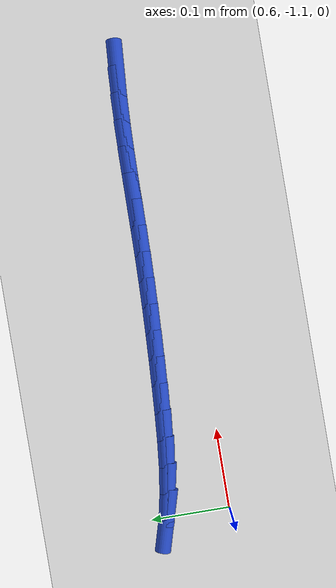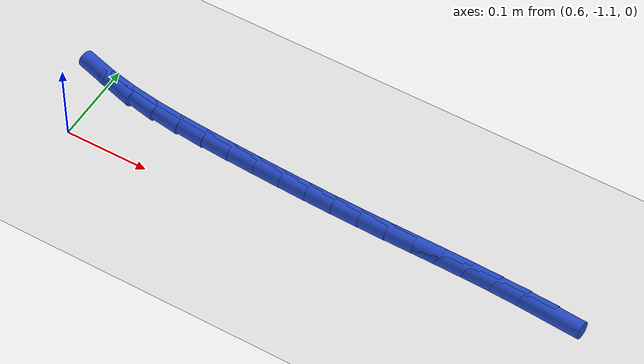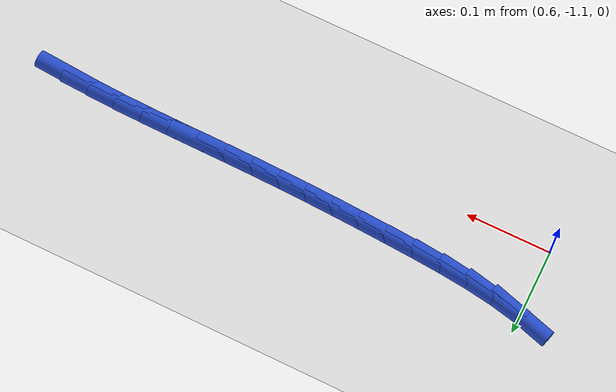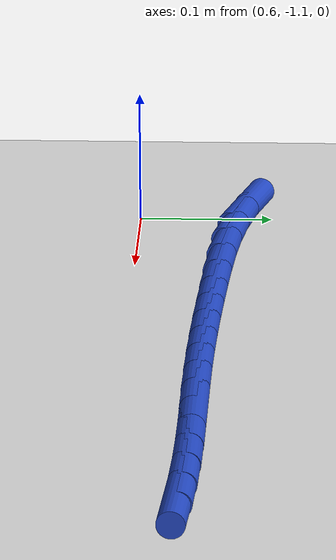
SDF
<sdf version="1.6">
 <world name="default">
  <model name="ground_plane">
   <static>1</static>
   <link name="link">
    <collision name="collision">
     <geometry><plane><normal>0 0 1</normal><size>100 100</size></plane></geometry>
     <surface><friction><ode><mu>100</mu><mu2>50</mu2></ode></friction></surface>
    </collision>
    <visual name="visual">
     <cast_shadows>0</cast_shadows>
     <geometry><plane><normal>0 0 1</normal><size>100 100</size></plane></geometry>
     <material>
      <script><uri>file://media/materials/scripts/gazebo.material</uri><name>Gazebo/WhiteGlow</name></script>
     </material>
    </visual>
   </link>
  </model>
  <model name="line">
   <link name="link_166">
    <pose>1.1658922789246216 -1.0504309613756277 0.01 0 1.57 -0.06785140257851958</pose>
    <collision name="collision">
     <geometry><cylinder><radius>0.01</radius><length>0.08</length></cylinder></geometry>
    </collision>
    <visual name="visual">
     <material>
      <script><name>Gazebo/Blue</name><uri>file://media/materials/scripts/gazebo.material</uri></script>
     </material>
     <geometry><cylinder><radius>0.01</radius><length>0.08</length></cylinder></geometry>
    </visual>
   </link>
   <link name="link_167">
    <pose>1.1324756657762847 -1.0481601113779255 0.01 0 1.57 -0.04367053878171912</pose>
    <collision name="collision">
     <geometry><cylinder><radius>0.01</radius><length>0.08</length></cylinder></geometry>
    </collision>
    <visual name="visual">
     <material>
      <script><name>Gazebo/Blue</name><uri>file://media/materials/scripts/gazebo.material</uri></script>
     </material>
     <geometry><cylinder><radius>0.01</radius><length>0.08</length></cylinder></geometry>
    </visual>
   </link>
   <link name="link_168">
    <pose>1.0988367079408106 -1.0466901453811612 0.01 0 1.57 -0.025552253250502956</pose>
    <collision name="collision">
     <geometry><cylinder><radius>0.01</radius><length>0.08</length></cylinder></geometry>
    </collision>
    <visual name="visual">
     <material>
      <script><name>Gazebo/Blue</name><uri>file://media/materials/scripts/gazebo.material</uri></script>
     </material>
     <geometry><cylinder><radius>0.01</radius><length>0.08</length></cylinder></geometry>
    </visual>
   </link>
   <link name="link_169">
    <pose>1.065064367211241 -1.0458269981151058 0.01 0 1.57 -0.013317868203687081</pose>
    <collision name="collision">
     <geometry><cylinder><radius>0.01</radius><length>0.08</length></cylinder></geometry>
    </collision>
    <visual name="visual">
     <material>
      <script><name>Gazebo/Blue</name><uri>file://media/materials/scripts/gazebo.material</uri></script>
     </material>
     <geometry><cylinder><radius>0.01</radius><length>0.08</length></cylinder></geometry>
    </visual>
   </link>
   <link name="link_170">
    <pose>1.0312476053806199 -1.0453766043095307 0.01 0 1.57 -0.006860726717782273</pose>
    <collision name="collision">
     <geometry><cylinder><radius>0.01</radius><length>0.08</length></cylinder></geometry>
    </collision>
    <visual name="visual">
     <material>
      <script><name>Gazebo/Blue</name><uri>file://media/materials/scripts/gazebo.material</uri></script>
     </material>
     <geometry><cylinder><radius>0.01</radius><length>0.08</length></cylinder></geometry>
    </visual>
   </link>
   <link name="link_171">
    <pose>0.9974753842419892 -1.0451448986942067 0.01 0 1.57 -0.006156003786349527</pose>
    <collision name="collision">
     <geometry><cylinder><radius>0.01</radius><length>0.08</length></cylinder></geometry>
    </collision>
    <visual name="visual">
     <material>
      <script><name>Gazebo/Blue</name><uri>file://media/materials/scripts/gazebo.material</uri></script>
     </material>
     <geometry><cylinder><radius>0.01</radius><length>0.08</length></cylinder></geometry>
    </visual>
   </link>
   <link name="link_172">
    <pose>0.9638366655883918 -1.0449378159989056 0.01 0 1.57 -0.011259340271670987</pose>
    <collision name="collision">
     <geometry><cylinder><radius>0.01</radius><length>0.08</length></cylinder></geometry>
    </collision>
    <visual name="visual">
     <material>
      <script><name>Gazebo/Blue</name><uri>file://media/materials/scripts/gazebo.material</uri></script>
     </material>
     <geometry><cylinder><radius>0.01</radius><length>0.08</length></cylinder></geometry>
    </visual>
   </link>
   <link name="link_173">
    <pose>0.9304201776307665 -1.0445615524901863 0.01 0 1.57 -0.0204826197992698</pose>
    <collision name="collision">
     <geometry><cylinder><radius>0.01</radius><length>0.08</length></cylinder></geometry>
    </collision>
    <visual name="visual">
     <material>
      <script><name>Gazebo/Blue</name><uri>file://media/materials/scripts/gazebo.material</uri></script>
     </material>
     <geometry><cylinder><radius>0.01</radius><length>0.08</length></cylinder></geometry>
    </visual>
   </link>
   <link name="link_174">
    <pose>0.8972610902640152 -1.0438822725135826 0.01 0 1.57 -0.029700293975770092</pose>
    <collision name="collision">
     <geometry><cylinder><radius>0.01</radius><length>0.08</length></cylinder></geometry>
    </collision>
    <visual name="visual">
     <material>
      <script><name>Gazebo/Blue</name><uri>file://media/materials/scripts/gazebo.material</uri></script>
     </material>
     <geometry><cylinder><radius>0.01</radius><length>0.08</length></cylinder></geometry>
    </visual>
   </link>
   <link name="link_175">
    <pose>0.8642730305654022 -1.0429022292580727 0.01 0 1.57 -0.0382490300272785</pose>
    <collision name="collision">
     <geometry><cylinder><radius>0.01</radius><length>0.08</length></cylinder></geometry>
    </collision>
    <visual name="visual">
     <material>
      <script><name>Gazebo/Blue</name><uri>file://media/materials/scripts/gazebo.material</uri></script>
     </material>
     <geometry><cylinder><radius>0.01</radius><length>0.08</length></cylinder></geometry>
    </visual>
   </link>
   <link name="link_176">
    <pose>0.8313528580523821 -1.041642450183844 0.01 0 1.57 -0.046044441346511734</pose>
    <collision name="collision">
     <geometry><cylinder><radius>0.01</radius><length>0.08</length></cylinder></geometry>
    </collision>
    <visual name="visual">
     <material>
      <script><name>Gazebo/Blue</name><uri>file://media/materials/scripts/gazebo.material</uri></script>
     </material>
     <geometry><cylinder><radius>0.01</radius><length>0.08</length></cylinder></geometry>
    </visual>
   </link>
   <link name="link_177">
    <pose>0.7983974322424103 -1.0401239627510839 0.01 0 1.57 -0.05301662527133543</pose>
    <collision name="collision">
     <geometry><cylinder><radius>0.01</radius><length>0.08</length></cylinder></geometry>
    </collision>
    <visual name="visual">
     <material>
      <script><name>Gazebo/Blue</name><uri>file://media/materials/scripts/gazebo.material</uri></script>
     </material>
     <geometry><cylinder><radius>0.01</radius><length>0.08</length></cylinder></geometry>
    </visual>
   </link>
   <link name="link_178">
    <pose>0.7653036126529407 -1.0383677944199805 0.01 0 1.57 -0.05943370253610626</pose>
    <collision name="collision">
     <geometry><cylinder><radius>0.01</radius><length>0.08</length></cylinder></geometry>
    </collision>
    <visual name="visual">
     <material>
      <script><name>Gazebo/Blue</name><uri>file://media/materials/scripts/gazebo.material</uri></script>
     </material>
     <geometry><cylinder><radius>0.01</radius><length>0.08</length></cylinder></geometry>
    </visual>
   </link>
   <link name="link_179">
    <pose>0.731976685711178 -1.0363847162222908 0.01 0 1.57 -0.07268682785072937</pose>
    <collision name="collision">
     <geometry><cylinder><radius>0.01</radius><length>0.08</length></cylinder></geometry>
    </collision>
    <visual name="visual">
     <material>
      <script><name>Gazebo/Blue</name><uri>file://media/materials/scripts/gazebo.material</uri></script>
     </material>
     <geometry><cylinder><radius>0.01</radius><length>0.08</length></cylinder></geometry>
    </visual>
   </link>
   <link name="link_180">
    <pose>0.698516800492766 -1.0339483310145818 0.01 0 1.57 -0.10038939282073053</pose>
    <collision name="collision">
     <geometry><cylinder><radius>0.01</radius><length>0.08</length></cylinder></geometry>
    </collision>
    <visual name="visual">
     <material>
      <script><name>Gazebo/Blue</name><uri>file://media/materials/scripts/gazebo.material</uri></script>
     </material>
     <geometry><cylinder><radius>0.01</radius><length>0.08</length></cylinder></geometry>
    </visual>
   </link>
   <link name="link_181">
    <pose>0.665219550338435 -1.0305943655900869 0.01 0 1.57 -0.14357270187553825</pose>
    <collision name="collision">
     <geometry><cylinder><radius>0.01</radius><length>0.08</length></cylinder></geometry>
    </collision>
    <visual name="visual">
     <material>
      <script><name>Gazebo/Blue</name><uri>file://media/materials/scripts/gazebo.material</uri></script>
     </material>
     <geometry><cylinder><radius>0.01</radius><length>0.08</length></cylinder></geometry>
    </visual>
   </link>
   <link name="link_182">
    <pose>0.6323890718223169 -1.0258481487355866 0.01 0 1.57 -0.20342341333524971</pose>
    <collision name="collision">
     <geometry><cylinder><radius>0.01</radius><length>0.08</length></cylinder></geometry>
    </collision>
    <visual name="visual">
     <material>
      <script><name>Gazebo/Blue</name><uri>file://media/materials/scripts/gazebo.material</uri></script>
     </material>
     <geometry><cylinder><radius>0.01</radius><length>0.08</length></cylinder></geometry>
    </visual>
   </link>
   <link name="link_183">
    <pose>0.6003295015185439 -1.0192350092378604 0.01 0 1.57 -0.2810918432433905</pose>
    <collision name="collision">
     <geometry><cylinder><radius>0.01</radius><length>0.08</length></cylinder></geometry>
    </collision>
    <visual name="visual">
     <material>
      <script><name>Gazebo/Blue</name><uri>file://media/materials/scripts/gazebo.material</uri></script>
     </material>
     <geometry><cylinder><radius>0.01</radius><length>0.08</length></cylinder></geometry>
    </visual>
   </link>
  </model>
 </world>
</sdf>
